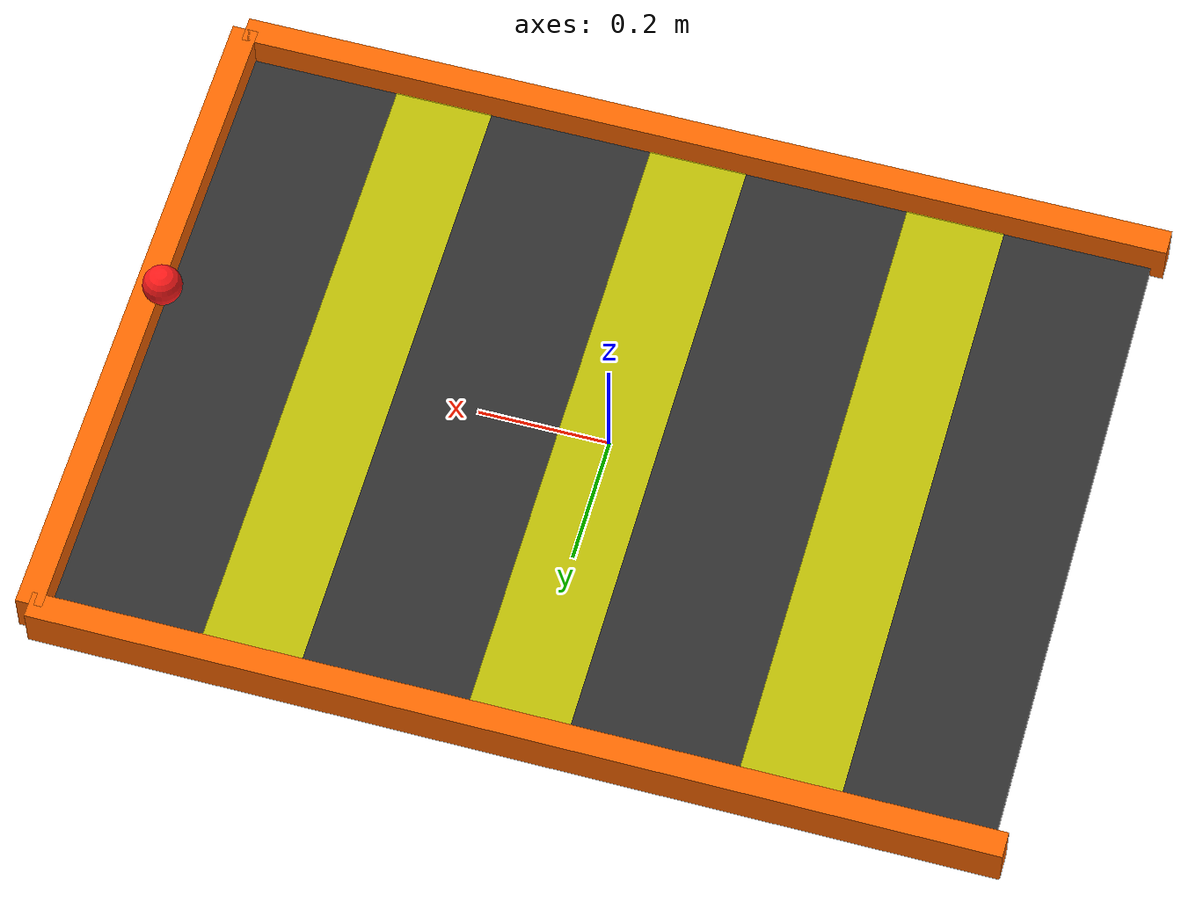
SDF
<?xml version="1.0"?>
<sdf version="1.7">
  <model name="drop_station">
    <static>true</static>
    <link name="link">
      <!-- Recessed drop bay floor -->
      <collision name="bay_floor"><pose>0 0 0.01 0 0 0</pose><geometry><box><size>1.4 1.0 0.02</size></box></geometry></collision>
      <visual name="bay_floor">
        <pose>0 0 0.01 0 0 0</pose>
        <geometry><box><size>1.4 1.0 0.02</size></box></geometry>
        <material><ambient>0.18 0.18 0.18 1</ambient><diffuse>0.18 0.18 0.18 1</diffuse></material>
      </visual>

      <!-- Perimeter safety bumper (orange) — 4 sides -->
      <collision name="bumper_n"><pose>0  0.52 0.035 0 0 0</pose><geometry><box><size>1.44 0.04 0.07</size></box></geometry></collision>
      <visual name="bumper_n"><pose>0  0.52 0.035 0 0 0</pose><geometry><box><size>1.44 0.04 0.07</size></box></geometry><material><ambient>1.0 0.4 0.0 1</ambient></material></visual>
      <collision name="bumper_s"><pose>0 -0.52 0.035 0 0 0</pose><geometry><box><size>1.44 0.04 0.07</size></box></geometry></collision>
      <visual name="bumper_s"><pose>0 -0.52 0.035 0 0 0</pose><geometry><box><size>1.44 0.04 0.07</size></box></geometry><material><ambient>1.0 0.4 0.0 1</ambient></material></visual>
      <collision name="bumper_e"><pose> 0.72 0 0.035 0 0 0</pose><geometry><box><size>0.04 1.04 0.07</size></box></geometry></collision>
      <visual name="bumper_e"><pose> 0.72 0 0.035 0 0 0</pose><geometry><box><size>0.04 1.04 0.07</size></box></geometry><material><ambient>1.0 0.4 0.0 1</ambient></material></visual>
      <!-- West side open for AGV entry -->

      <!-- Zebra striped floor markings -->
      <visual name="stripe_1"><pose>-0.4 0 0.021 0 0 0</pose><geometry><box><size>0.15 1.0 0.001</size></box></geometry><material><ambient>1 1 0 0.7</ambient></material></visual>
      <visual name="stripe_2"><pose> 0.0 0 0.021 0 0 0</pose><geometry><box><size>0.15 1.0 0.001</size></box></geometry><material><ambient>1 1 0 0.7</ambient></material></visual>
      <visual name="stripe_3"><pose> 0.4 0 0.021 0 0 0</pose><geometry><box><size>0.15 1.0 0.001</size></box></geometry><material><ambient>1 1 0 0.7</ambient></material></visual>

      <!-- "DROP" indicator light (red) -->
      <visual name="indicator">
        <pose>0.68 0 0.15 0 0 0</pose>
        <geometry><sphere><radius>0.03</radius></sphere></geometry>
        <material><ambient>1.0 0.1 0.1 1</ambient><diffuse>1.0 0.1 0.1 1</diffuse><emissive>0.8 0.0 0.0 1</emissive></material>
      </visual>
    </link>
  </model>
</sdf>
